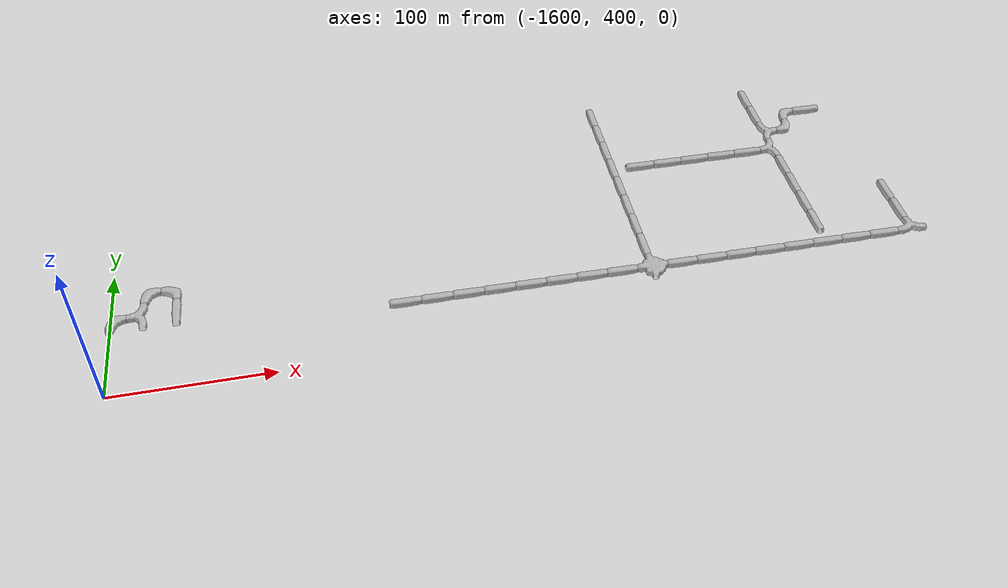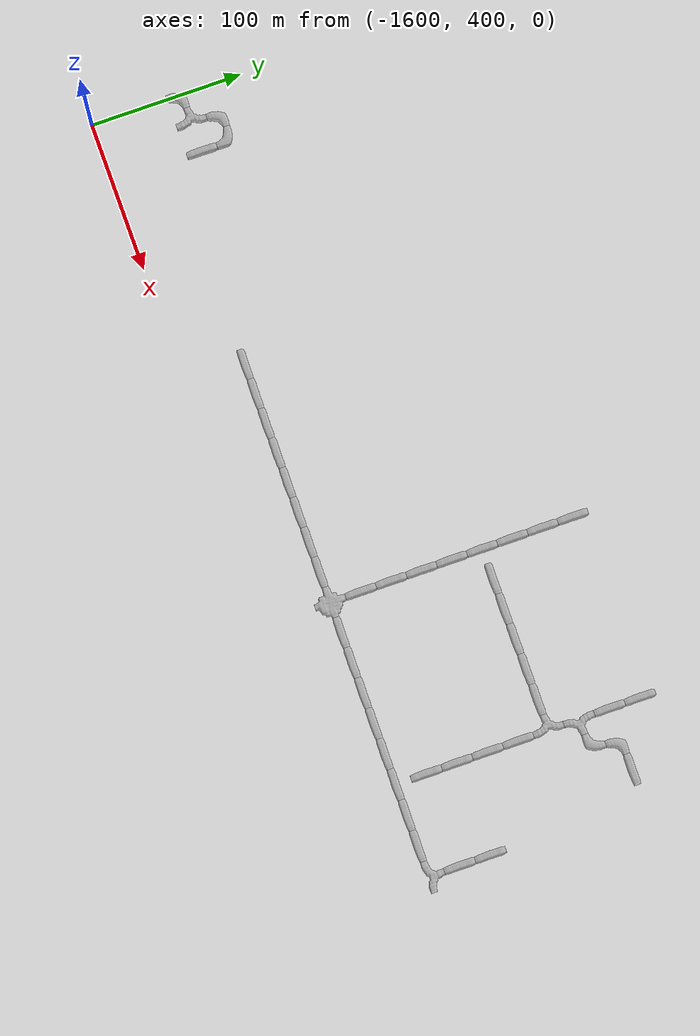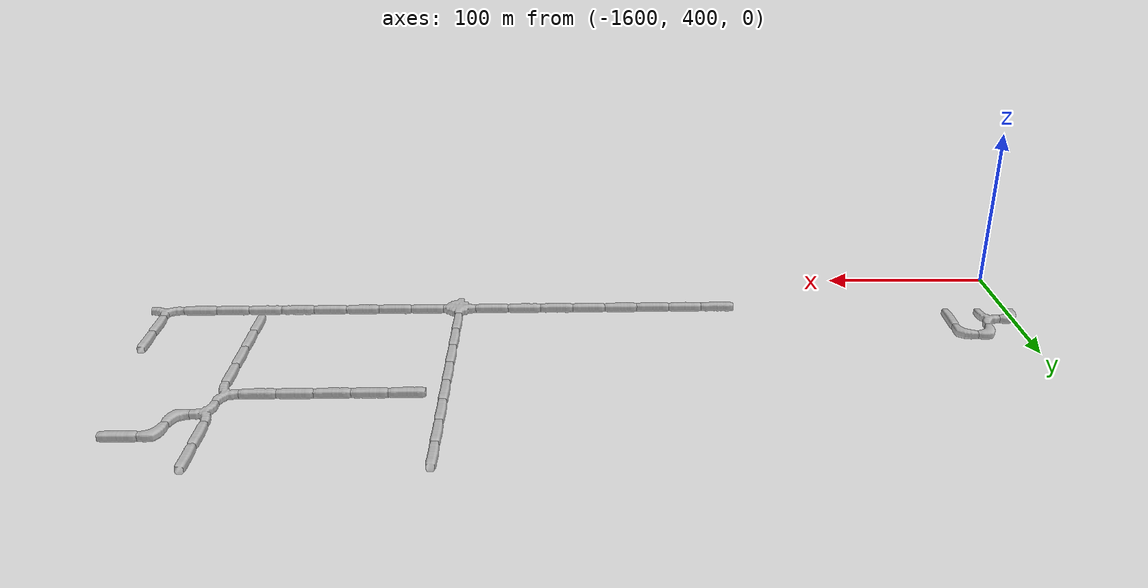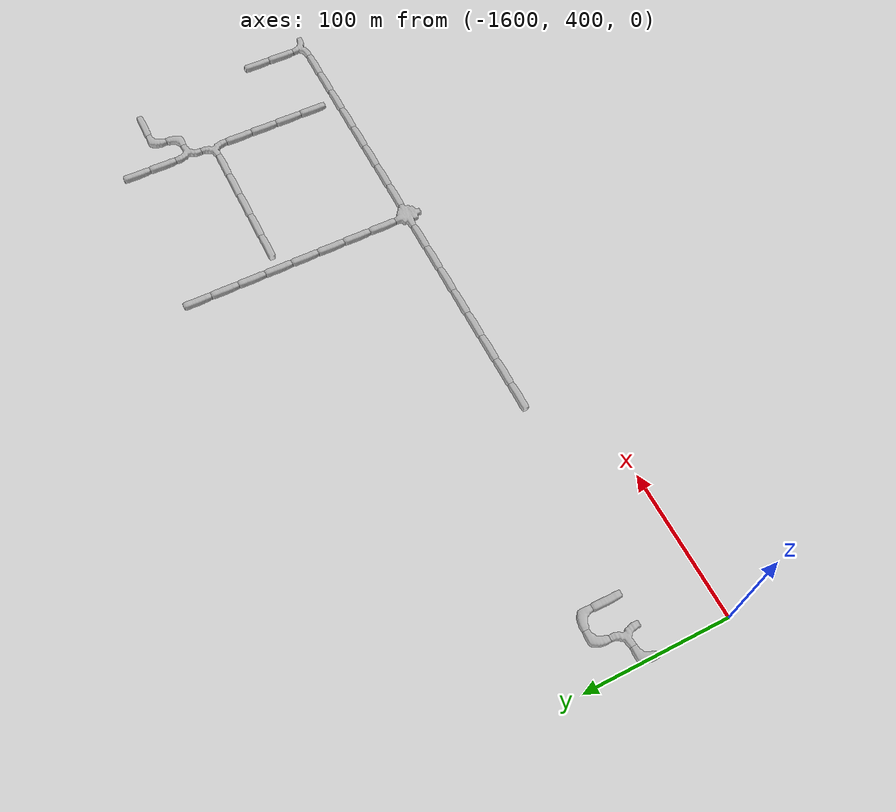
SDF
<sdf version="1.6">
 <world name="cave_16000_2">
  <include>
   <static>true</static>
   <name>cave_-54_22</name>
   <pose>-1080 440 0 0 0 0.0</pose>
   <uri>model://cave_3way_20m</uri>
  </include>
  <include>
   <static>true</static>
   <name>cave_-55_22</name>
   <pose>-1100 440 0 0 0 1.5707963267948966</pose>
   <uri>model://cave_straight_20m</uri>
  </include>
  <include>
   <static>true</static>
   <name>cave_-56_22</name>
   <pose>-1120 440 0 0 0 1.5707963267948966</pose>
   <uri>model://cave_straight_20m</uri>
  </include>
  <include>
   <static>true</static>
   <name>cave_-57_22</name>
   <pose>-1140 440 0 0 0 1.5707963267948966</pose>
   <uri>model://cave_straight_20m</uri>
  </include>
  <include>
   <static>true</static>
   <name>cave_-58_22</name>
   <pose>-1160 440 0 0 0 1.5707963267948966</pose>
   <uri>model://cave_straight_20m</uri>
  </include>
  <include>
   <static>true</static>
   <name>cave_-59_22</name>
   <pose>-1180 440 0 0 0 1.5707963267948966</pose>
   <uri>model://cave_straight_20m</uri>
  </include>
  <include>
   <static>true</static>
   <name>cave_-60_22</name>
   <pose>-1200 440 0 0 0 1.5707963267948966</pose>
   <uri>model://cave_straight_20m</uri>
  </include>
  <include>
   <static>true</static>
   <name>cave_-61_22</name>
   <pose>-1220 440 0 0 0 1.5707963267948966</pose>
   <uri>model://cave_straight_20m</uri>
  </include>
  <include>
   <static>true</static>
   <name>cave_-62_22</name>
   <pose>-1240 440 0 0 0 1.5707963267948966</pose>
   <uri>model://cave_straight_20m</uri>
  </include>
  <include>
   <static>true</static>
   <name>cave_-63_22</name>
   <pose>-1260 440 0 0 0 -1.5707963267948966</pose>
   <uri>model://cave_4way_20m</uri>
  </include>
  <include>
   <static>true</static>
   <name>cave_-64_22</name>
   <pose>-1280 440 0 0 0 1.5707963267948966</pose>
   <uri>model://cave_straight_20m</uri>
  </include>
  <include>
   <static>true</static>
   <name>cave_-65_22</name>
   <pose>-1300 440 0 0 0 1.5707963267948966</pose>
   <uri>model://cave_straight_20m</uri>
  </include>
  <include>
   <static>true</static>
   <name>cave_-66_22</name>
   <pose>-1320 440 0 0 0 1.5707963267948966</pose>
   <uri>model://cave_straight_20m</uri>
  </include>
  <include>
   <static>true</static>
   <name>cave_-67_22</name>
   <pose>-1340 440 0 0 0 1.5707963267948966</pose>
   <uri>model://cave_straight_20m</uri>
  </include>
  <include>
   <static>true</static>
   <name>cave_-68_22</name>
   <pose>-1360 440 0 0 0 1.5707963267948966</pose>
   <uri>model://cave_straight_20m</uri>
  </include>
  <include>
   <static>true</static>
   <name>cave_-69_22</name>
   <pose>-1380 440 0 0 0 1.5707963267948966</pose>
   <uri>model://cave_straight_20m</uri>
  </include>
  <include>
   <static>true</static>
   <name>cave_-70_22</name>
   <pose>-1400 440 0 0 0 1.5707963267948966</pose>
   <uri>model://cave_straight_20m</uri>
  </include>
  <include>
   <static>true</static>
   <name>cave_-71_22</name>
   <pose>-1420 440 0 0 0 1.5707963267948966</pose>
   <uri>model://cave_straight_20m</uri>
  </include>
  <include>
   <static>true</static>
   <name>cave_-78_23</name>
   <pose>-1560 460 0 0 0 0.0</pose>
   <uri>model://cave_straight_20m</uri>
  </include>
  <include>
   <static>true</static>
   <name>cave_-78_24</name>
   <pose>-1560 480 0 0 0 3.141592653589793</pose>
   <uri>model://cave_L_20m</uri>
  </include>
  <include>
   <static>true</static>
   <name>cave_-79_24</name>
   <pose>-1580 480 0 0 0 -1.5707963267948966</pose>
   <uri>model://cave_L_20m</uri>
  </include>
  <include>
   <static>true</static>
   <name>cave_-79_23</name>
   <pose>-1580 460 0 0 0 1.5707963267948966</pose>
   <uri>model://cave_3way_20m</uri>
  </include>
  <include>
   <static>true</static>
   <name>cave_-80_23</name>
   <pose>-1600 460 0 0 0 -1.5707963267948966</pose>
   <uri>model://cave_L_20m</uri>
  </include>
  <include>
   <static>true</static>
   <name>cave_-63_23</name>
   <pose>-1260 460 0 0 0 0.0</pose>
   <uri>model://cave_straight_20m</uri>
  </include>
  <include>
   <static>true</static>
   <name>cave_-63_24</name>
   <pose>-1260 480 0 0 0 0.0</pose>
   <uri>model://cave_straight_20m</uri>
  </include>
  <include>
   <static>true</static>
   <name>cave_-63_25</name>
   <pose>-1260 500 0 0 0 0.0</pose>
   <uri>model://cave_straight_20m</uri>
  </include>
  <include>
   <static>true</static>
   <name>cave_-63_26</name>
   <pose>-1260 520 0 0 0 0.0</pose>
   <uri>model://cave_straight_20m</uri>
  </include>
  <include>
   <static>true</static>
   <name>cave_-63_27</name>
   <pose>-1260 540 0 0 0 0.0</pose>
   <uri>model://cave_straight_20m</uri>
  </include>
  <include>
   <static>true</static>
   <name>cave_-63_28</name>
   <pose>-1260 560 0 0 0 0.0</pose>
   <uri>model://cave_straight_20m</uri>
  </include>
  <include>
   <static>true</static>
   <name>cave_-63_29</name>
   <pose>-1260 580 0 0 0 0.0</pose>
   <uri>model://cave_straight_20m</uri>
  </include>
  <include>
   <static>true</static>
   <name>cave_-63_30</name>
   <pose>-1260 600 0 0 0 0.0</pose>
   <uri>model://cave_straight_20m</uri>
  </include>
  <include>
   <static>true</static>
   <name>cave_-57_30</name>
   <pose>-1140 600 0 0 0 0.0</pose>
   <uri>model://cave_straight_20m</uri>
  </include>
  <include>
   <static>true</static>
   <name>cave_-57_29</name>
   <pose>-1140 580 0 0 0 0.0</pose>
   <uri>model://cave_straight_20m</uri>
  </include>
  <include>
   <static>true</static>
   <name>cave_-57_28</name>
   <pose>-1140 560 0 0 0 -1.5707963267948966</pose>
   <uri>model://cave_3way_20m</uri>
  </include>
  <include>
   <static>true</static>
   <name>cave_-56_28</name>
   <pose>-1120 560 0 0 0 1.5707963267948966</pose>
   <uri>model://cave_L_20m</uri>
  </include>
  <include>
   <static>true</static>
   <name>cave_-56_29</name>
   <pose>-1120 580 0 0 0 -1.5707963267948966</pose>
   <uri>model://cave_L_20m</uri>
  </include>
  <include>
   <static>true</static>
   <name>cave_-55_29</name>
   <pose>-1100 580 0 0 0 1.5707963267948966</pose>
   <uri>model://cave_straight_20m</uri>
  </include>
  <include>
   <static>true</static>
   <name>cave_-57_27</name>
   <pose>-1140 540 0 0 0 1.5707963267948966</pose>
   <uri>model://cave_3way_20m</uri>
  </include>
  <include>
   <static>true</static>
   <name>cave_-57_26</name>
   <pose>-1140 520 0 0 0 0.0</pose>
   <uri>model://cave_straight_20m</uri>
  </include>
  <include>
   <static>true</static>
   <name>cave_-57_25</name>
   <pose>-1140 500 0 0 0 0.0</pose>
   <uri>model://cave_straight_20m</uri>
  </include>
  <include>
   <static>true</static>
   <name>cave_-57_24</name>
   <pose>-1140 480 0 0 0 0.0</pose>
   <uri>model://cave_straight_20m</uri>
  </include>
  <include>
   <static>true</static>
   <name>cave_-57_23</name>
   <pose>-1140 460 0 0 0 0.0</pose>
   <uri>model://cave_straight_20m</uri>
  </include>
  <include>
   <static>true</static>
   <name>cave_-58_27</name>
   <pose>-1160 540 0 0 0 1.5707963267948966</pose>
   <uri>model://cave_straight_20m</uri>
  </include>
  <include>
   <static>true</static>
   <name>cave_-59_27</name>
   <pose>-1180 540 0 0 0 1.5707963267948966</pose>
   <uri>model://cave_straight_20m</uri>
  </include>
  <include>
   <static>true</static>
   <name>cave_-60_27</name>
   <pose>-1200 540 0 0 0 1.5707963267948966</pose>
   <uri>model://cave_straight_20m</uri>
  </include>
  <include>
   <static>true</static>
   <name>cave_-61_27</name>
   <pose>-1220 540 0 0 0 1.5707963267948966</pose>
   <uri>model://cave_straight_20m</uri>
  </include>
  <include>
   <static>true</static>
   <name>cave_-62_27</name>
   <pose>-1240 540 0 0 0 1.5707963267948966</pose>
   <uri>model://cave_straight_20m</uri>
  </include>
  <include>
   <static>true</static>
   <name>cave_-54_23</name>
   <pose>-1080 460 0 0 0 0.0</pose>
   <uri>model://cave_straight_20m</uri>
  </include>
  <include>
   <static>true</static>
   <name>cave_-54_24</name>
   <pose>-1080 480 0 0 0 0.0</pose>
   <uri>model://cave_straight_20m</uri>
  </include>
 </world>
</sdf>
